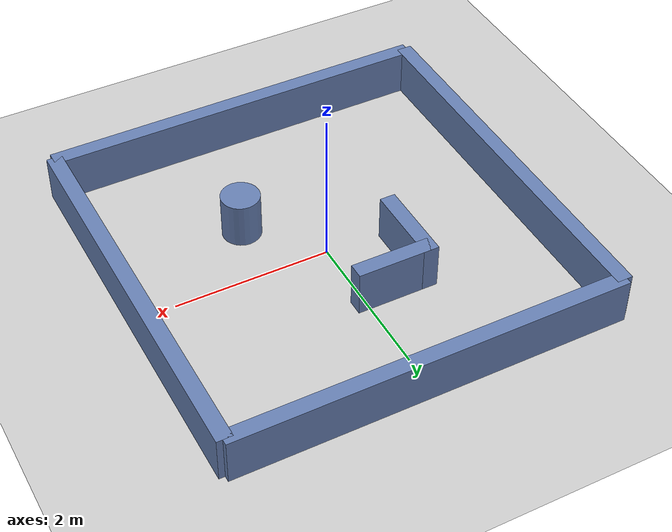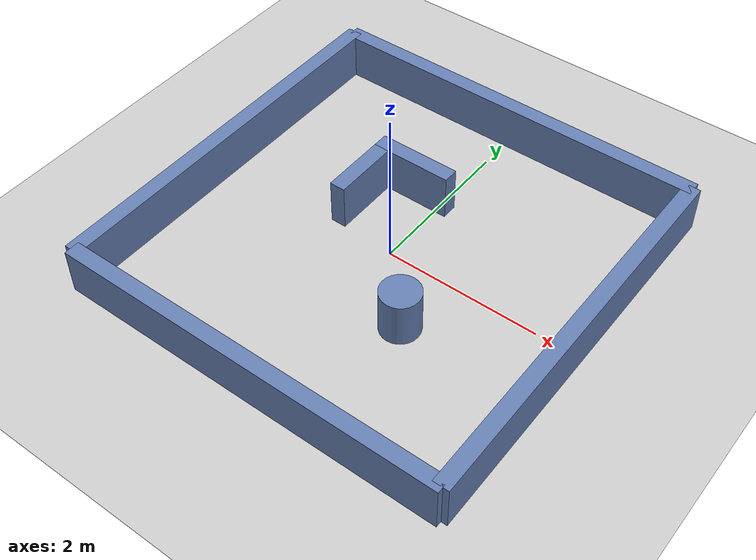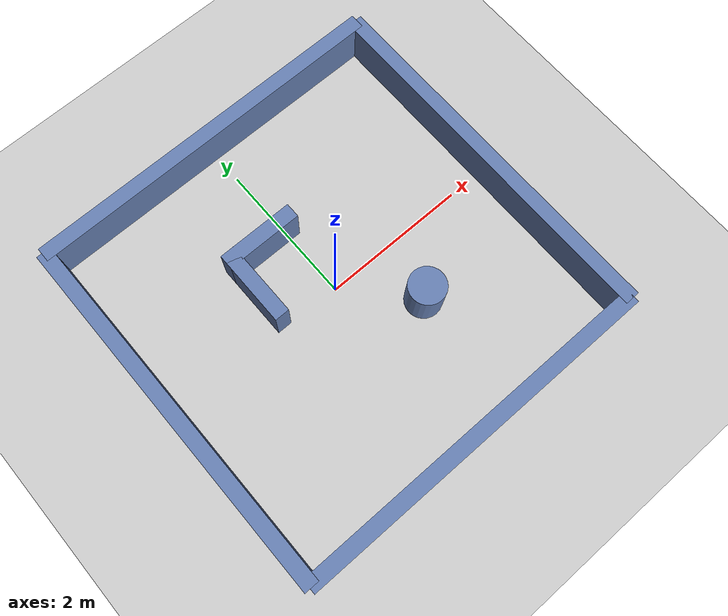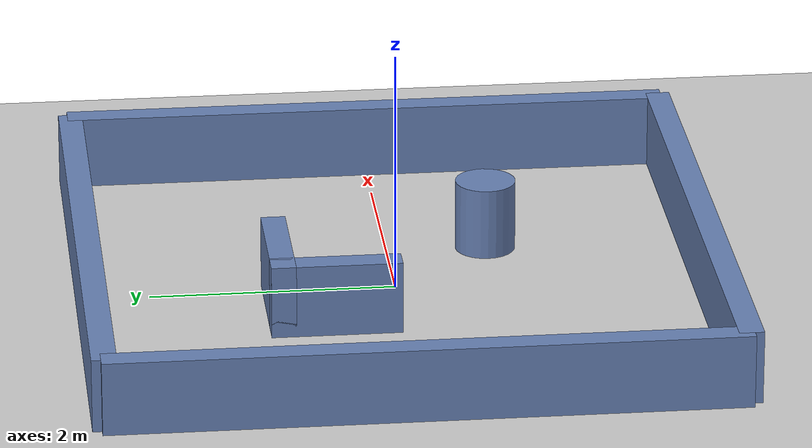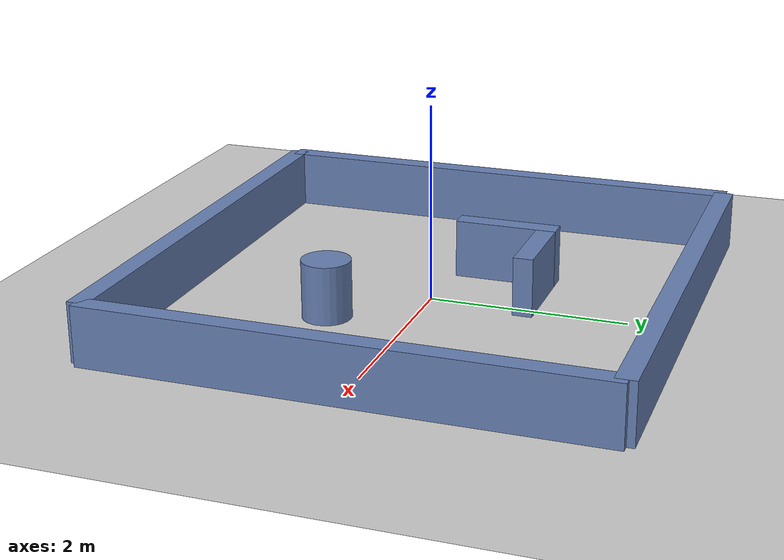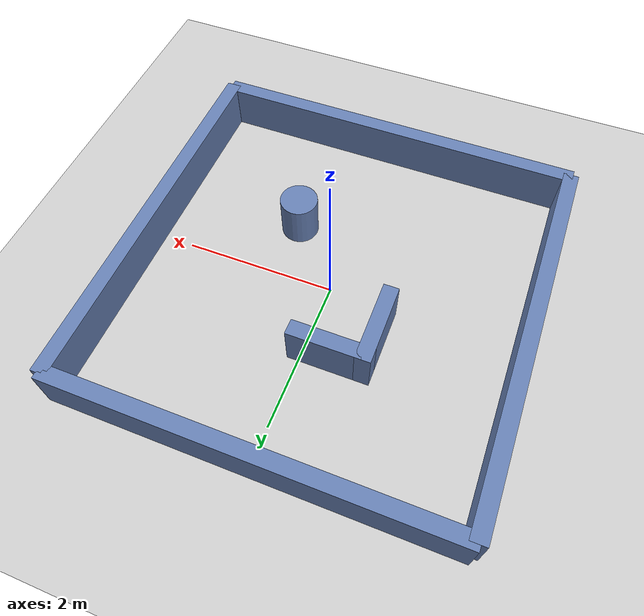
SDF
<sdf version="1.7">
 <world name="default">
  <light name="sun" type="directional">
   <pose>0 0 10 0 -0 0</pose>
   <diffuse>0.8 0.8 0.8 1</diffuse>
   <specular>0.2 0.2 0.2 1</specular>
   <attenuation>
    <range>1000</range>
    <constant>0.9</constant>
    <linear>0.01</linear>
    <quadratic>0.001</quadratic>
   </attenuation>
   <direction>-0.5 0.1 -0.9</direction>
   <spot><inner_angle>0</inner_angle><outer_angle>0</outer_angle><falloff>0</falloff></spot>
  </light>
  <model name="ground_plane">
   <static>1</static>
   <link name="link">
    <collision name="collision">
     <geometry><plane><normal>0 0 1</normal><size>100 100</size></plane></geometry>
     <surface>
      <contact><collide_bitmask>65535</collide_bitmask></contact>
      <friction><ode><mu>100</mu><mu2>50</mu2></ode></friction>
     </surface>
    </collision>
    <visual name="visual">
     <cast_shadows>0</cast_shadows>
     <geometry><plane><normal>0 0 1</normal><size>100 100</size></plane></geometry>
     <material>
      <script><uri>file://media/materials/scripts/gazebo.material</uri><name>Gazebo/Grey</name></script>
     </material>
    </visual>
   </link>
  </model>
  <gravity>0 0 -9.8</gravity>
  <magnetic_field>6e-06 2.3e-05 -4.2e-05</magnetic_field>
  <atmosphere type="adiabatic"/>
  <physics type="ode">
   <max_step_size>0.001</max_step_size>
   <real_time_factor>1</real_time_factor>
   <real_time_update_rate>1000</real_time_update_rate>
  </physics>
  <scene><ambient>0.4 0.4 0.4 1</ambient><background>0.7 0.7 0.7 1</background><shadows>1</shadows></scene>
  <spherical_coordinates>
   <surface_model>EARTH_WGS84</surface_model>
   <latitude_deg>0</latitude_deg>
   <longitude_deg>0</longitude_deg>
   <elevation>0</elevation>
   <heading_deg>0</heading_deg>
  </spherical_coordinates>
  <model name="less_obstacles_env">
   <link name="Wall_19">
    <collision name="Wall_19_Collision">
     <geometry><box><size>5.05 0.2 0.6</size></box></geometry>
     <pose>0 0 0.3 0 -0 0</pose>
    </collision>
    <visual name="Wall_19_Visual">
     <pose>0 0 0.3 0 -0 0</pose>
     <geometry><box><size>5.05 0.2 0.6</size></box></geometry>
     <material>
      <script><uri>file://media/materials/scripts/gazebo.material</uri><name>Gazebo/Grey</name></script>
      <ambient>0.4 0.5 0.7 1</ambient>
     </material>
     <meta><layer>0</layer></meta>
    </visual>
    <pose>-2.5 0.0 0 0 0 -1.5708</pose>
   </link>
   <link name="Wall_20">
    <collision name="Wall_20_Collision">
     <geometry><box><size>5.05 0.2 0.6</size></box></geometry>
     <pose>0 0 0.3 0 -0 0</pose>
    </collision>
    <visual name="Wall_20_Visual">
     <pose>0 0 0.3 0 -0 0</pose>
     <geometry><box><size>5.05 0.2 0.6</size></box></geometry>
     <material>
      <script><uri>file://media/materials/scripts/gazebo.material</uri><name>Gazebo/Grey</name></script>
      <ambient>0.4 0.5 0.7 1</ambient>
     </material>
     <meta><layer>0</layer></meta>
    </visual>
    <pose>-0.0 -2.5 0 0 -0 0</pose>
   </link>
   <link name="Wall_21">
    <collision name="Wall_21_Collision">
     <geometry><box><size>5.05 0.2 0.6</size></box></geometry>
     <pose>0 0 0.3 0 -0 0</pose>
    </collision>
    <visual name="Wall_21_Visual">
     <pose>0 0 0.3 0 -0 0</pose>
     <geometry><box><size>5.05 0.2 0.6</size></box></geometry>
     <material>
      <script><uri>file://media/materials/scripts/gazebo.material</uri><name>Gazebo/Grey</name></script>
      <ambient>0.4 0.5 0.7 1</ambient>
     </material>
     <meta><layer>0</layer></meta>
    </visual>
    <pose>2.5 0.0 0 0 -0 1.5708</pose>
   </link>
   <link name="Wall_22">
    <collision name="Wall_22_Collision">
     <geometry><box><size>5.04995 0.2 0.6</size></box></geometry>
     <pose>0 0 0.3 0 -0 0</pose>
    </collision>
    <visual name="Wall_22_Visual">
     <pose>0 0 0.3 0 -0 0</pose>
     <geometry><box><size>5.04995 0.2 0.6</size></box></geometry>
     <material>
      <script><uri>file://media/materials/scripts/gazebo.material</uri><name>Gazebo/Grey</name></script>
      <ambient>0.4 0.5 0.7 1</ambient>
     </material>
     <meta><layer>0</layer></meta>
    </visual>
    <pose>-0.0 2.5 0 0 -0 3.14159</pose>
   </link>
   <link name="Wall_33">
    <collision name="Wall_33_Collision">
     <geometry><box><size>1.05 0.2 0.6</size></box></geometry>
     <pose>0 0 0.3 0 -0 0</pose>
    </collision>
    <visual name="Wall_33_Visual">
     <pose>0 0 0.3 0 -0 0</pose>
     <geometry><box><size>1.05 0.2 0.6</size></box></geometry>
     <material>
      <script><uri>file://media/materials/scripts/gazebo.material</uri><name>Gazebo/Grey</name></script>
      <ambient>0.4 0.5 0.7 1</ambient>
     </material>
     <meta><layer>0</layer></meta>
    </visual>
    <pose>-0.377 0.984 0 0 -0 3.14159</pose>
   </link>
   <link name="Wall_34">
    <collision name="Wall_34_Collision">
     <geometry><box><size>1.05031 0.2 0.6</size></box></geometry>
     <pose>0 0 0.3 0 -0 0</pose>
    </collision>
    <visual name="Wall_34_Visual">
     <pose>0 0 0.3 0 -0 0</pose>
     <geometry><box><size>1.05031 0.2 0.6</size></box></geometry>
     <material>
      <script><uri>file://media/materials/scripts/gazebo.material</uri><name>Gazebo/Grey</name></script>
      <ambient>0.4 0.5 0.7 1</ambient>
     </material>
     <meta><layer>0</layer></meta>
    </visual>
    <pose>-0.802 0.559 0 0 -0 -1.5708</pose>
   </link>
   <static>1</static>
  </model>
  <model name="unit_cylinder">
   <pose>0.75432 -0.81668 0.296811 0 -0 0</pose>
   <link name="link">
    <inertial>
     <mass>1</mass>
     <inertia><ixx>0.145833</ixx><ixy>0</ixy><ixz>0</ixz><iyy>0.145833</iyy><iyz>0</iyz><izz>0.125</izz></inertia>
    </inertial>
    <collision name="collision">
     <geometry><cylinder><radius>0.247609</radius><length>0.593636</length></cylinder></geometry>
    </collision>
    <visual name="visual">
     <geometry><cylinder><radius>0.247609</radius><length>0.593636</length></cylinder></geometry>
     <material>
      <script><name>Gazebo/Grey</name><uri>file://media/materials/scripts/gazebo.material</uri></script>
      <ambient>0.4 0.5 0.7 1</ambient>
     </material>
    </visual>
   </link>
  </model>
 </world>
</sdf>
